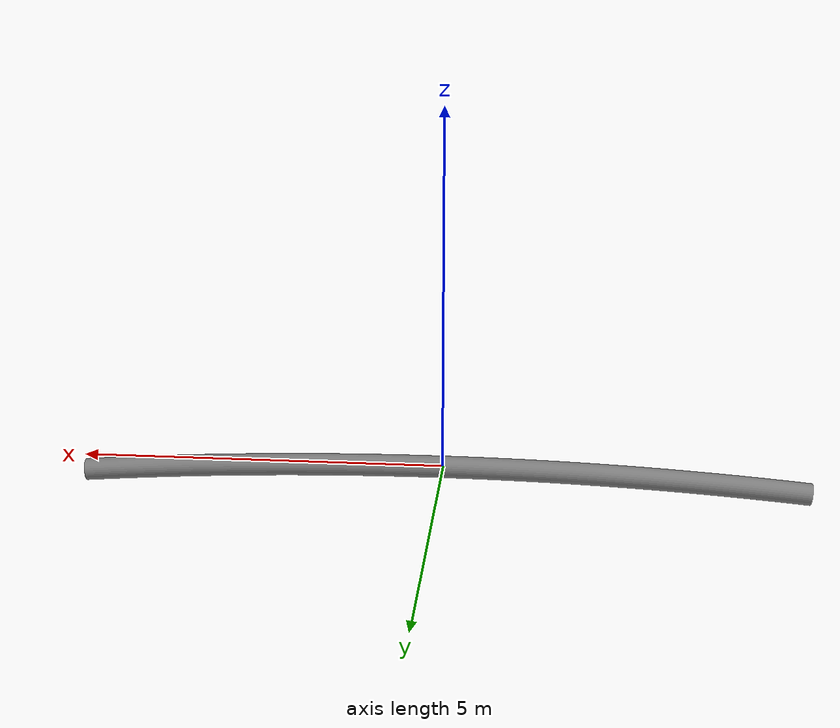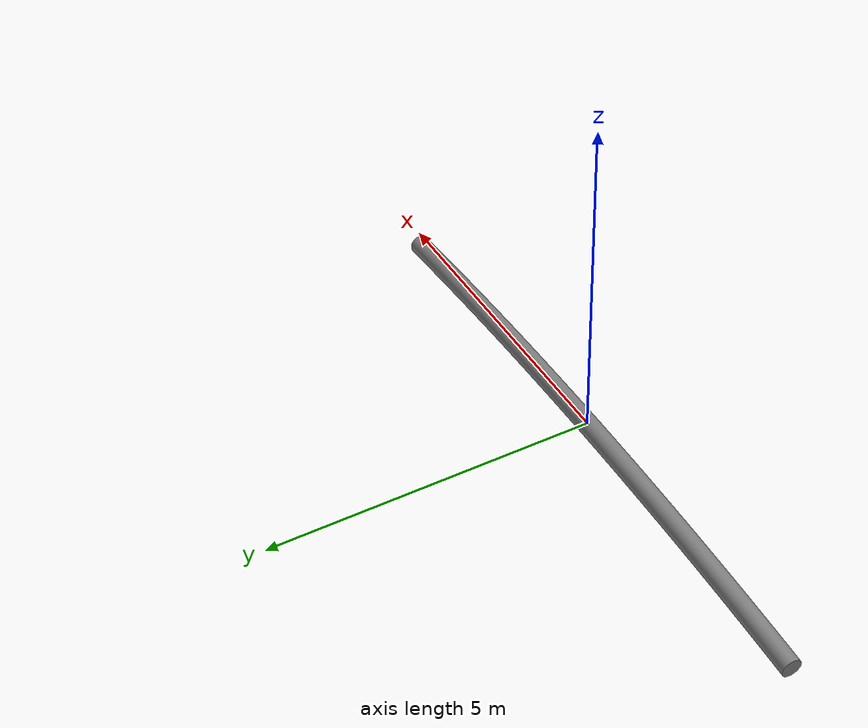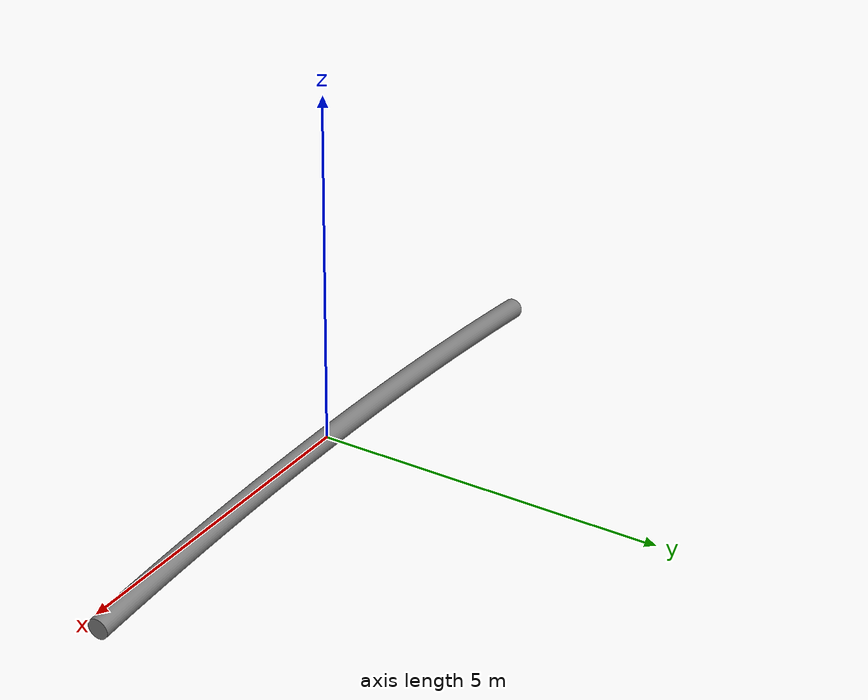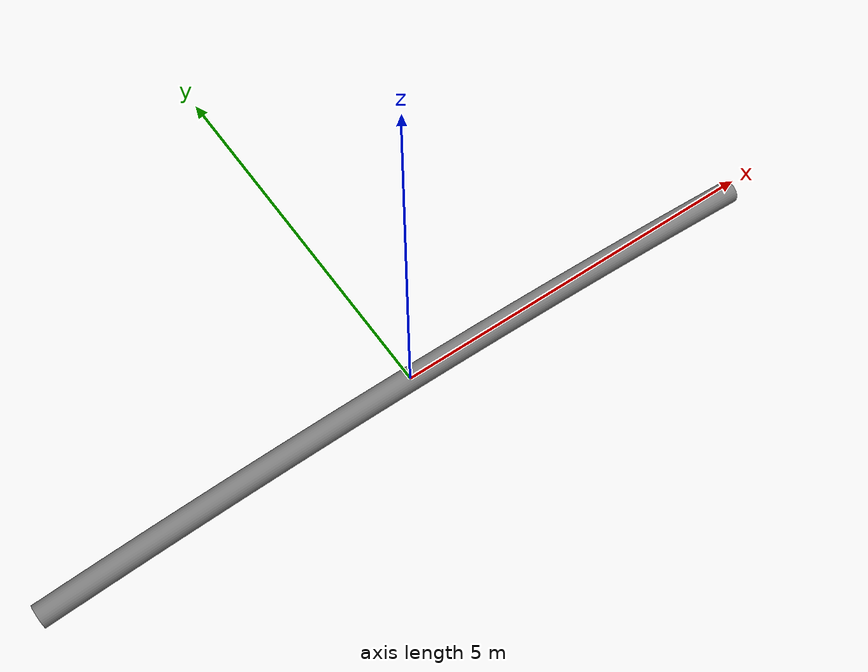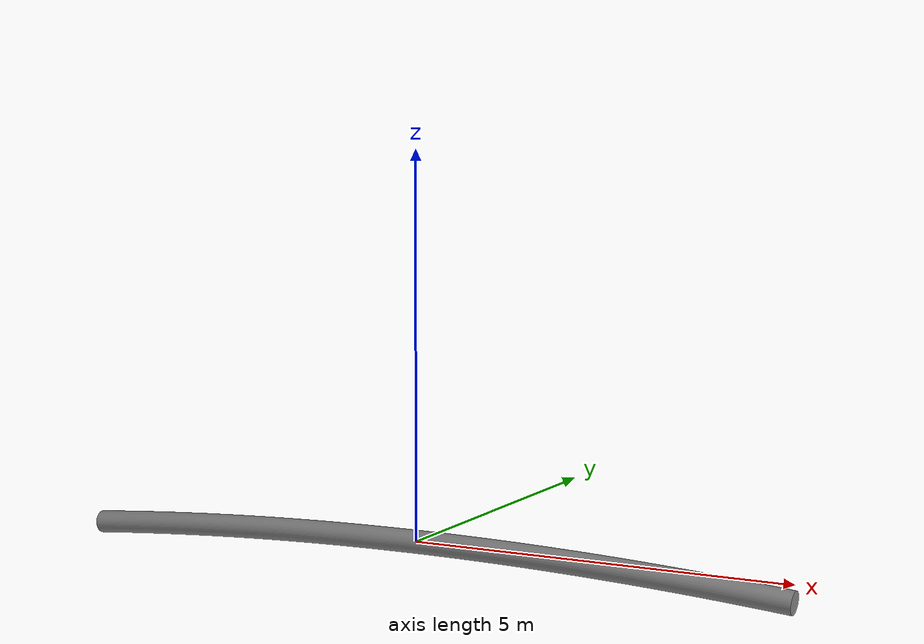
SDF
<?xml version="1.0" ?>
<sdf version="1.9">
  <model name="bend_tube">
    <static>false</static>

    <link name="tube_link">
      <gravity>false</gravity>
      <kinematic>true</kinematic>
      <visual name="tube_visual">
        <geometry>
          <mesh>
            <uri>model://bend_tube/bend_tube.obj</uri>
          </mesh>
        </geometry>
        <material>
          <ambient>0.5 0.5 0.5 1</ambient>
          <diffuse>0.5 0.5 0.5 1</diffuse>
          <specular>0.3 0.3 0.3 1</specular>
        </material>
      </visual>

      <collision name="tube_collision">
        <geometry>
          <mesh>
            <uri>model://bend_tube/bend_tube.obj</uri>
          </mesh>
        </geometry>
      </collision>
    </link>

  </model>
</sdf>
